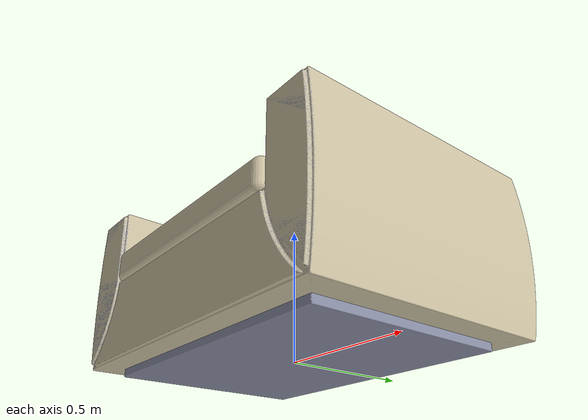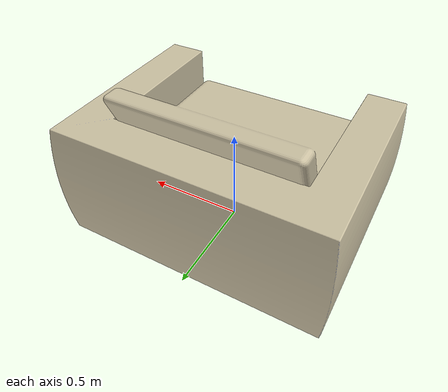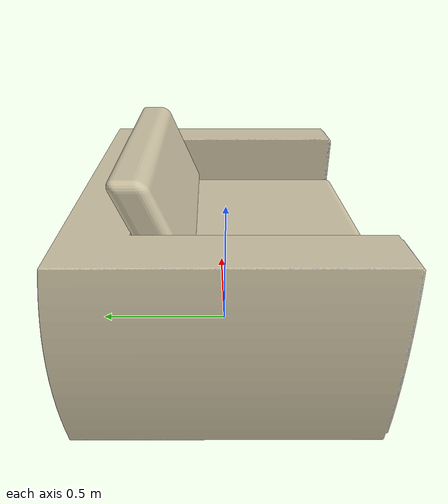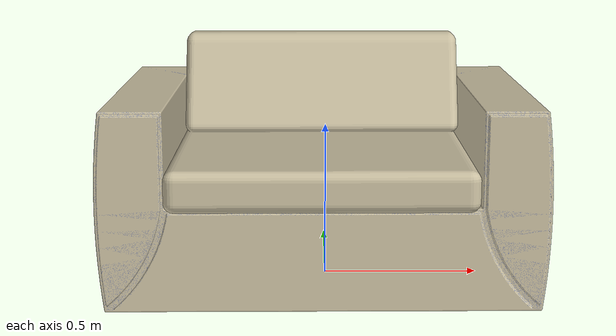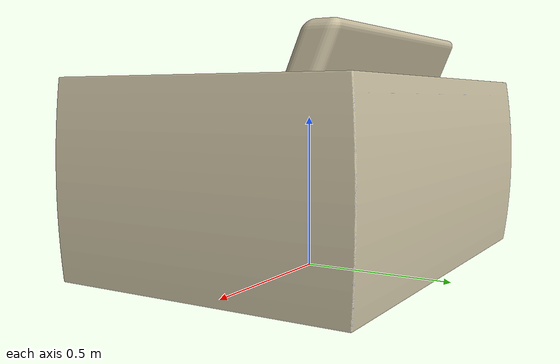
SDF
<?xml version='1.0'?>
<sdf version='1.6'>
  <model name='chair_set_2'>
    <link name='link_10'>
      <pose frame=''>0.020402 -0.647852 0 0 -0 0</pose>
       <visual name='visual'>
        <pose frame=''>0 0 0 0 -0 0</pose>
        <geometry>
          <mesh>
            <uri>model://chair_set_2/meshes/chair_frame.dae</uri>
            <scale>1 1 1</scale>
          </mesh>
        </geometry>
           <material>
          <script>
            <uri>model://chair_set_2/materials/scripts</uri>
            <uri>model://chair_set_2/materials/textures</uri>
            <name>chair_set_2</name>
          </script>
        </material>
        <cast_shadows>1</cast_shadows>
        <transparency>0</transparency>
      </visual>
      <collision name='collision'>
        <laser_retro>0</laser_retro>
        <max_contacts>10</max_contacts>
        <pose frame=''>0 0 0 0 -0 0</pose>
        <geometry>
          <mesh>
            <uri>model://chair_set_2/meshes/chair_frame.dae</uri>
            <scale>1 1 1</scale>
          </mesh>
        </geometry>
      </collision>
    </link>
    <link name='link_11'>
      <pose frame=''>0.015343 -0.628735 0 0 -0 0</pose>
      <visual name='visual'>
        <pose frame=''>0 0 0 0 -0 0</pose>
        <geometry>
          <mesh>
            <uri>model://chair_set_2/meshes/chair_cushions.dae</uri>
            <scale>1 1 1</scale>
          </mesh>
        </geometry>
           <material>
          <script>
            <uri>model://chair_set_2/materials/scripts</uri>
            <uri>model://chair_set_2/materials/textures</uri>
            <name>chair_set_2</name>
          </script>
        </material>
        <cast_shadows>1</cast_shadows>
        <transparency>0</transparency>
      </visual>
      <collision name='collision'>
        <laser_retro>0</laser_retro>
        <max_contacts>10</max_contacts>
        <pose frame=''>0 0 0 0 -0 0</pose>
        <geometry>
          <mesh>
            <uri>model://chair_set_2/meshes/chair_cushions.dae</uri>
            <scale>1 1 1</scale>
          </mesh>
        </geometry>
      </collision>
    </link>
    <static>1</static>
    <allow_auto_disable>1</allow_auto_disable>
  </model>
</sdf>
